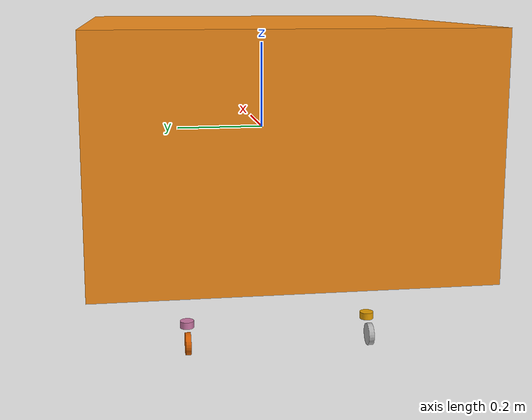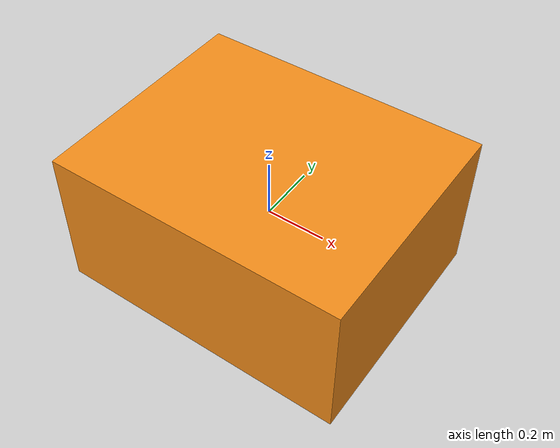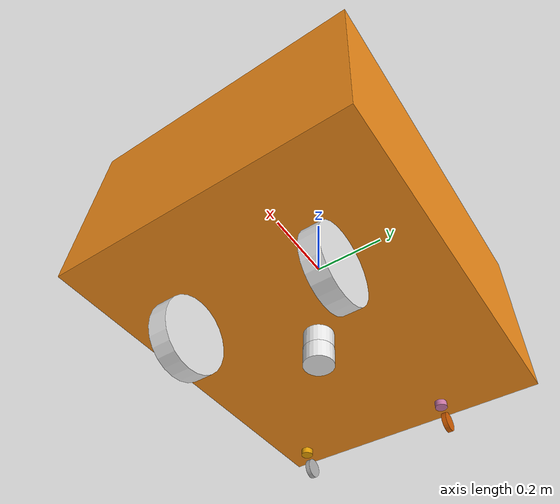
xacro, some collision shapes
<?xml version="1.0"?>

<robot name="nsc_robot" xmlns:xacro="http://www.ros.org/wiki/xacro">
 <xacro:include filename="$(find onebot_description)/urdf/caster.urdf.xacro" />
 <xacro:include filename="$(find nsc_robot_description)/urdf/nsc_robot_platform.gazebo" />
 <xacro:include filename="$(find nsc_robot_description)/urdf/lidar.xacro" />
 <!-- Constants for robot dimensions -->
  <xacro:property name="PI" value="3.1415926535897931"/>
  <xacro:property name="mass" value="0.1" /> <!-- arbitrary value for mass -->
  <xacro:property name="mass_wheel" value="0.2" /> <!-- arbitrary value for mass -->
  <xacro:property name="mass_base" value="30" />
  <xacro:property name="width" value="0.8" />
  <xacro:property name="depth" value="1.0" />
  <xacro:property name="radius_wheel" value="0.1" />
  <xacro:property name="radius_small_wheel" value="0.05" />
  <xacro:property name="length_wheel" value="0.05" />
  <xacro:property name="height1" value="0.5" /> <!-- Link 1 -->
  <xacro:property name="height2" value="0.1" /> <!-- Link 2 -->
  <xacro:property name="height3" value="1" /> <!-- Link 3 -->
  <xacro:property name="camera_link" value="0.05" />
  <xacro:property name="axel_offset" value="0.05" />
  <xacro:arg name="mesh_enabled" default="false" />

<xacro:macro name="default_inertial_wheel" params="mass radius_wheel length_wheel" >
    <inertial>
            <mass value="${mass}" />
            <inertia ixx="${0.25 * mass * radius_wheel**2 + 1/12 * mass * length_wheel**2}" ixy="0.0" ixz="0.0"
                 iyy="${1/2 * mass * radius_wheel**2}" iyz="0.0"
                 izz="${0.25 * mass * radius_wheel**2 + 1/12 * mass * length_wheel**2}" />
    </inertial>
</xacro:macro>

<xacro:macro name="default_inertial" params="mass" >
    <inertial>
            <mass value="${mass}" />
            <inertia ixx="0.1" ixy="0.0" ixz="0.0"
                 iyy="0.1"
                 izz="0.1" />
    </inertial>
</xacro:macro>

<xacro:macro name="wheel" params="parent_link name_link radius_wheel mass_wheel length_wheel x y z rot_x rot_y rot_z">
    <link name="${name_link}_leg">
        <visual>
            <geometry>
                <cylinder radius="${radius_wheel}" length="${length_wheel}"/>
            </geometry>
            <origin xyz="0 0 0" rpy="${PI/2} 0 0"/>
            <material name="white"/>
        </visual>
        <collision>
            <geometry>
                <cylinder radius="${radius_wheel}" length="${length_wheel}"/>
            </geometry>
            <origin xyz="0 0 0" rpy="${PI/2} 0 0"/>
        </collision>
        <xacro:default_inertial_wheel mass="${mass_wheel}" radius_wheel="${radius_wheel}" length_wheel="${length_wheel}"/>
    </link>

    <joint name="base_to_${name_link}" type="continuous">
        <parent link="${parent_link}"/>
        <child link="${name_link}_leg"/>
        <origin xyz="${x} ${y} ${z}" />
        <axis xyz="${rot_x} ${rot_y} ${rot_z}"/>
    </joint>
    <!-- A bunch of stuff cut -->
</xacro:macro>

<xacro:wheel parent_link="base_link" name_link="wheel_front_left" radius_wheel="${radius_wheel}" mass_wheel="${mass_wheel}" length_wheel="${length_wheel}" x="${depth/4}" y="${width/4}" z="${-height1/2 - radius_wheel}" rot_x="0" rot_y="1" rot_z="0" />
<xacro:wheel parent_link="base_link" name_link="wheel_front_right" radius_wheel="${radius_wheel}" mass_wheel="${mass_wheel}" length_wheel="${length_wheel}" x="${depth/4}" y="${-width/4}" z="${-height1/2 - radius_wheel}" rot_x="0" rot_y="1" rot_z="0" />

  <!-- Base Link -->
  <link name="base_link">
    <visual>
      <origin xyz="0 0 0" rpy="0 0 0"/>
      <geometry>
        <box size="${depth} ${width} ${height1}"/>
      </geometry>
      <material name="orange"/>
    </visual>

    <collision>
      <origin xyz="0 0 0" rpy="0 0 0"/>
      <geometry>
        <box size="${depth} ${width} ${height1}"/>
      </geometry>
    </collision>

    <inertial>
      <origin xyz="0 0 0" rpy="0 0 0"/>
      <mass value="${mass_base}"/>
      <inertia
          ixx="${mass / 12.0 * (width*width + height1*height1)}" ixy="0.0" ixz="0.0"
          iyy="${mass / 12.0 * (height1*height1 + width*width)}" iyz="0.0"
          izz="${mass / 12.0 * (width*width + width*width)}"/>
    </inertial>
  </link>

    <xacro:caster caster_prefix="left_rear" parent_link="base_link" >
        <origin xyz="${-depth/4} ${width/4} ${-height1/2 - 2 * radius_wheel + 0.065}" rpy="0 0 0" />
    </xacro:caster>

    <xacro:caster caster_prefix="right_rear" parent_link="base_link" >
        <origin xyz="${-depth/4} ${-width/4} ${-height1/2 - 2 * radius_wheel + 0.065}" rpy="0 0 0" />
    </xacro:caster>

  <transmission name="tran1">
    <type>transmission_interface/SimpleTransmission</type>
    <joint name="base_to_wheel_front_left">
      <hardwareInterface>EffortJointInterface</hardwareInterface>
    </joint>
    <actuator name="motor1">
      <hardwareInterface>EffortJointInterface</hardwareInterface>
      <mechanicalReduction>1</mechanicalReduction>
    </actuator>

  </transmission>
    <transmission name="tran2">
    <type>transmission_interface/SimpleTransmission</type>
    <joint name="base_to_wheel_front_right">
      <hardwareInterface>EffortJointInterface</hardwareInterface>
    </joint>
    <actuator name="motor2">
      <hardwareInterface>EffortJointInterface</hardwareInterface>
      <mechanicalReduction>1</mechanicalReduction>
    </actuator>
  </transmission>

</robot>

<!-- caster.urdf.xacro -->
<robot xmlns:xacro="http://ros.org/wiki/xacro" >

	<!-- Caster Dimensions -->
	<!-- These Dimensions are directly taken from the Solidworks model-->
    <xacro:property name="caster_wheel_length" value="0.02333" />
    <xacro:property name="caster_wheel_radius" value="0.024165" />
    <xacro:property name="caster_base_length" value="0.015" />
    <xacro:property name="caster_base_radius" value="0.015" />
    <xacro:property name="caster_base_joint_x" value="-0.02626" />
    <xacro:property name="caster_base_joint_z" value="-0.042385" />
    <xacro:property name="caster_base_link_z" value="-0.05615" />
    <xacro:property name="M_PI" value="3.14" />

	<xacro:property name="wheel_kp" value="600000" />
    <xacro:property name="wheel_kd" value="3" />
    <xacro:property name="wheel_mu1" value="10000000" />
    <xacro:property name="wheel_mu2" value="10000000" />

	<xacro:macro name="caster" params="caster_prefix parent_link *joint_pose">
		<!-- Caster Wheel Link -->
		<link name="${caster_prefix}_caster_link">
			<!--  These values are taken from the mass properties tool of Solidworks			 -->
			<inertial>
				<mass value="0.03837" />
				<origin xyz="0 0 0" />
				<inertia  ixx="0.000008221" ixy="0" ixz="0" iyy="0.000013003" iyz="0" izz="0.000008221" />
			</inertial>
			<!-- Here we included visual mesh generated from Blender as
  				 the visual geometry of the caster wheel link-->
			<visual>
                <origin xyz="0 0 0" rpy="${M_PI/2} 0 0" />
				<geometry>
					<mesh filename="package://onebot_description/meshes/caswheel.dae" />
				</geometry>
			</visual>
			<!--  A simplified cylinder is used as the collision geometry -->
			<collision>
				<origin xyz="0 0 0" rpy="${M_PI/2} 0 0" />
				<geometry>
					<cylinder length="${caster_wheel_length/2}" radius="${caster_wheel_radius}" />
				</geometry>
			</collision>
		</link>

		<!-- Caster Base Link -->
        <link name="${caster_prefix}_caster_base">
			<inertial>
				<mass value="0.06597" />
				<origin xyz="-0.01204 0 -0.01454" />
				<inertia  ixx="0.000039912" ixy="0" ixz="0.000017794" iyy="0.000050728" iyz="0" izz="0.000035261" />
			</inertial>
			<visual>
				<!-- Here the xacro arguments have been used. If the argument is true the visual mesh is used as
	 				 the visual geometry otherwise a simple cylinder is used as the visual geometry-->
				<xacro:if value="$(arg mesh_enabled)">
					<origin xyz="0 0 0" rpy="0 0 0" />
					<geometry>
						<mesh filename="package://onebot_description/meshes/caster_base2.dae" />
					</geometry>
				</xacro:if>
				<xacro:unless value="$(arg mesh_enabled)">
					<origin xyz="0 0 ${-caster_base_length/2}" rpy="0 0 0" />
					<geometry>
						<cylinder length="${caster_base_length}" radius="${caster_base_radius}" />
					</geometry>
				</xacro:unless>
			</visual>
			<collision>
				<origin xyz="0 0 ${-caster_base_length/2}" rpy="0 0 0" />
				<geometry>
					<cylinder length="${caster_base_length}" radius="${caster_base_radius}" />
				</geometry>
			</collision>
		</link>

		<!-- Caster Base Link and Wheel Link Joint
			 This joint is defined as a continuous type which enables the continuous movement in the joint. -->
        <joint name="${caster_prefix}_cwheel" type="continuous">
			<parent link="${caster_prefix}_caster_base"/>
			<child link="${caster_prefix}_caster_link"/>
			<origin xyz="${caster_base_joint_x} 0 ${caster_base_joint_z}" rpy="0 0 0" />
			<axis xyz="0 1 0" rpy="0 0 0" />
		</joint>

		<!-- Caster base and parent joint
			 This joint is also defined as continuous. A friction tag is added to model the friction
			 in the actual casters. Change the values and find which suits the best-->
		<joint name="${caster_prefix}_caster" type="continuous">
			<parent link="${parent_link}"/>
			<child link="${caster_prefix}_caster_base"/>
			<xacro:insert_block name="joint_pose"/>
			<axis xyz="0 0 1" rpy="0 0 0" />
			<dynamics friction="0.100" />
		</joint>

		<!-- The Gazebo physics engine ODE parameters are defined -->
		<gazebo reference="${caster_prefix}_caster_link">
			<mu1 value="${wheel_mu1}"/>
			<mu2 value="${wheel_mu2}"/>
			<kp>${wheel_kp}</kp>
    		<kd>${wheel_kd}</kd>
			<dampingFactor>0.05</dampingFactor>
			<fdir1 value="1 0 0"/>
		</gazebo>

        <gazebo reference="${caster_prefix}_caster_base">
			<mu1 value="${wheel_mu1}"/>
			<mu2 value="${wheel_mu2}"/>
			<kp>${wheel_kp}</kp>
    		<kd>${wheel_kd}</kd>
			<fdir1 value="1 0 0"/>
		</gazebo>

		<!-- A transmission tag is added to visualize the motion of the caster in Rviz through
			 the joint state controller -->
		<transmission name="${caster_prefix}_caster_trans" type="SimpleTransmission">
			<type>transmission_interface/SimpleTransmission</type>
			<actuator name="${caster_prefix}_caster_motor">
				<mechanicalReduction>1</mechanicalReduction>
			</actuator>
			<joint name="${caster_prefix}_caster">
				<hardwareInterface>hardware_interface/EffortJointInterface</hardwareInterface>
			</joint>
		</transmission>

		<transmission name="${caster_prefix}_casterbase_trans" type="SimpleTransmission">
			<type>transmission_interface/SimpleTransmission</type>
			<actuator name="${caster_prefix}_casterbase_motor">
				<mechanicalReduction>1</mechanicalReduction>
			</actuator>
			<joint name="${caster_prefix}_cwheel">
				<hardwareInterface>hardware_interface/EffortJointInterface</hardwareInterface>
			</joint>
		</transmission>

	</xacro:macro>

</robot>

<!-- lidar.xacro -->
<robot xmlns:xacro="http://ros.org/wiki/xacro">

  <xacro:property name="PI" value="3.1415926535897931"/>

<xacro:macro name="default_inertial_horizontal_wheel" params="mass radius_wheel length_wheel" >
    <inertial>
            <mass value="${mass}" />
            <inertia ixx="${0.25 * mass * radius_wheel**2 + 1/12 * mass * length_wheel**2}" ixy="0.0" ixz="0.0"
                 iyy="${1/2 * mass * radius_wheel**2}" iyz="0.0"
                 izz="${0.25 * mass * radius_wheel**2 + 1/12 * mass * length_wheel**2}" />
    </inertial>
</xacro:macro>

<xacro:macro name="horizontal_wheel" params="parent_link name_link radius_wheel mass_wheel length_wheel x y z rot_x rot_y rot_z joint_type lidar_given">
    <link name="${name_link}">
        <visual>
            <geometry>
                <cylinder radius="${radius_wheel}" length="${length_wheel}"/>
            </geometry>
            <origin xyz="0 0 0" rpy="0 0 0"/>
            <material name="white"/>
        </visual>
        <collision>
            <geometry>
                <cylinder radius="${radius_wheel}" length="${length_wheel}"/>
            </geometry>
            <origin xyz="0 0 0" rpy="0 0 0"/>
        </collision>
        <xacro:default_inertial_horizontal_wheel mass="${mass_wheel}" radius_wheel="${radius_wheel}" length_wheel="${length_wheel}"/>
    </link>

    <joint name="joint_${name_link}" type="${joint_type}">
        <parent link="${parent_link}"/>
        <child link="${name_link}"/>
        <origin xyz="${x} ${y} ${z}" />
        <axis xyz="${rot_x} ${rot_y} ${rot_z}"/>
    </joint>
    <!-- A bunch of stuff cut -->

   <xacro:if value="${lidar_given}">
     <gazebo reference="${name_link}">
    <material>Gazebo/Grey</material>
    <mu1>0.2</mu1>
    <mu2>0.2</mu2>

   <sensor type="ray" name="${name_link}_lidar">

     <plugin name="ros_ray_sensor_controller" filename="libgazebo_ros_laser.so">
        <topicName>/nsc_robot/laser/scan</topicName>
        <frameName>${name_link}</frameName>
     </plugin>

       <always_on>true</always_on>
       <pose>0 0 0 0 0 0</pose>
       <visualize>true</visualize>
       <update_rate>30</update_rate>
       <ray>
         <scan>
           <horizontal>
             <samples>32</samples>
             <resolution>1</resolution>
             <min_angle>-3.1415</min_angle>
             <max_angle>3.1415</max_angle>
           </horizontal>
         </scan>
          <range>
           <min>0.5</min>
           <max>5.0</max>
           <resolution>0.02</resolution>
         </range>
      </ray>
   </sensor>
   </gazebo>
   </xacro:if>

</xacro:macro>

<xacro:horizontal_wheel parent_link="base_link" name_link="lidar_base" radius_wheel="0.04" mass_wheel="1.0" length_wheel="0.05"
             x="0.0" y="0.0" z="${-(0.5/2 + 0.05/2)}" rot_x="0" rot_y="0" rot_z="1" joint_type="fixed" lidar_given="${False}"/>

<xacro:horizontal_wheel parent_link="lidar_base" name_link="lidar_top" radius_wheel="0.04" mass_wheel="0.3" length_wheel="0.05"
             x="0.0" y="0.0" z="-0.05" rot_x="0" rot_y="0" rot_z="1" joint_type="fixed" lidar_given="${True}"/>

</robot>
